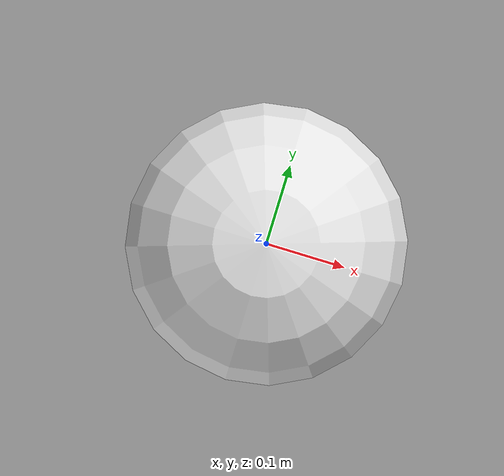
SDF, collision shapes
<?xml version="1.0"?>
<sdf version="1.7">
  <model name="large_box">
    <!-- The model for a solid box of uniform density. -->
    <link name="box">
      <inertial>
        <mass>0.45</mass>
        <inertia>
          <ixx>0.0062637435</ixx>
          <ixy>0</ixy>
          <ixz>0</ixz>
          <iyy>0.008846555999999998</iyy>
          <iyz>0</iyz>
          <izz>0.010024687499999999</izz>
        </inertia>
      </inertial>

      <visual name="box_with_lid_mesh">
        <geometry>
          <mesh>
            <scale>1 1 1</scale>
            <uri>box_with_lid_large_body.obj</uri>
          </mesh>
        </geometry>
        <material>
          <diffuse>0.9 0.9 0.9 0.9</diffuse>
        </material>
      </visual>

      <visual name="box_visual">
        <geometry>
          <sphere>
            <radius>0.17</radius>
          </sphere>
        </geometry>
        <material>
          <diffuse>0.8 0.2 0.2 0.5</diffuse>
        </material>
      </visual>
      <collision name="box_collision">
        <geometry>
          <sphere>
            <radius>0.17</radius>
          </sphere>
        </geometry>
        <surface>
          <friction>
            <ode>
              <mu>0.5</mu>
              <mu2>0.5</mu2>
            </ode>
          </friction>
        </surface>
      </collision>

      <collision name="minus_x_lower_left_corner">
        <pose> -0.205 -0.1575 -0.1302 0 0 0</pose>
        <geometry>
          <sphere>
            <radius>1e-7</radius>
          </sphere>
        </geometry>
        <surface>
          <friction>
            <ode>
              <mu>0.5</mu>
              <mu2>0.5</mu2>
            </ode>
          </friction>
        </surface>
      </collision>

      <collision name="minus_x_lower_right_corner">
        <pose> 0.205 -0.1575 -0.1302 0 0 0</pose>
        <geometry>
          <sphere>
            <radius>1e-7</radius>
          </sphere>
        </geometry>
        <surface>
          <friction>
            <ode>
              <mu>0.5</mu>
              <mu2>0.5</mu2>
            </ode>
          </friction>
        </surface>
      </collision>

      <collision name="plus_x_lower_left_corner">
        <pose> -0.205 0.1575 -0.1302 0 0 0</pose>
        <geometry>
          <sphere>
            <radius>1e-7</radius>
          </sphere>
        </geometry>
        <surface>
          <friction>
            <ode>
              <mu>0.5</mu>
              <mu2>0.5</mu2>
            </ode>
          </friction>
        </surface>
      </collision>

      <collision name="plus_x_lower_right_corner">
        <pose> 0.205 0.1575 -0.1302 0 0 0</pose>
        <geometry>
          <sphere>
            <radius>1e-7</radius>
          </sphere>
        </geometry>
        <surface>
          <friction>
            <ode>
              <mu>0.5</mu>
              <mu2>0.5</mu2>
            </ode>
          </friction>
        </surface>
      </collision>

    </link>
  </model>
</sdf>
